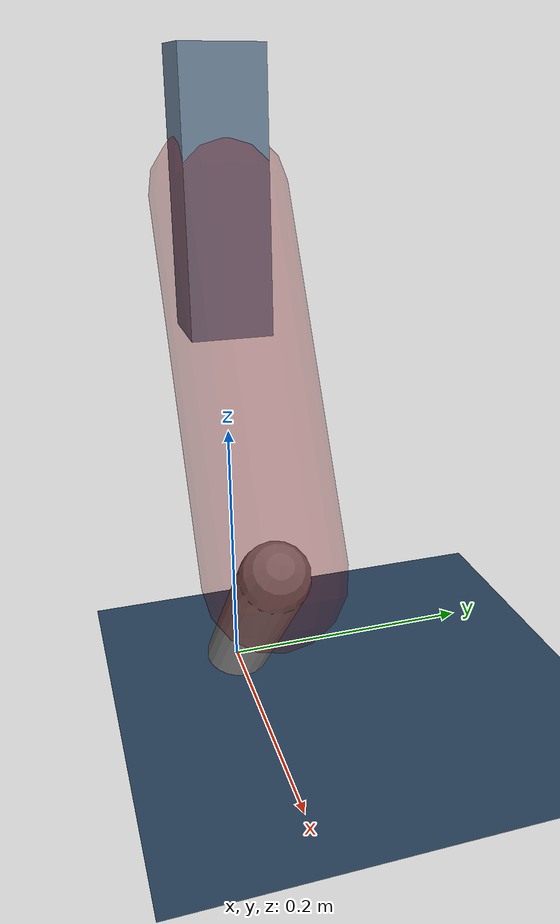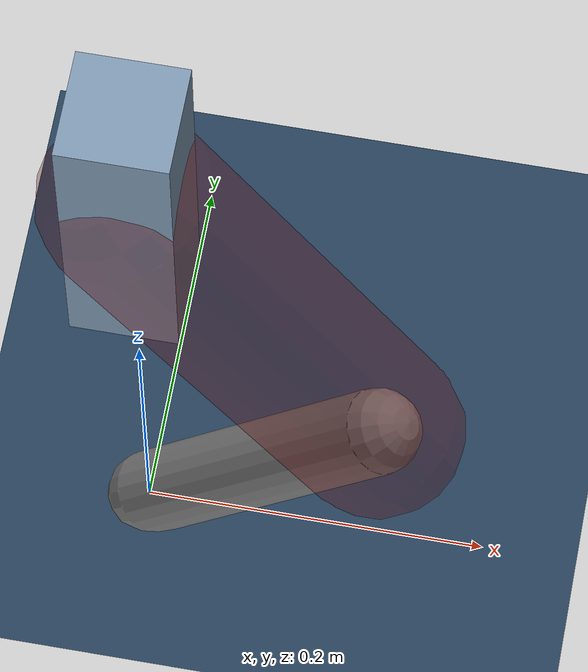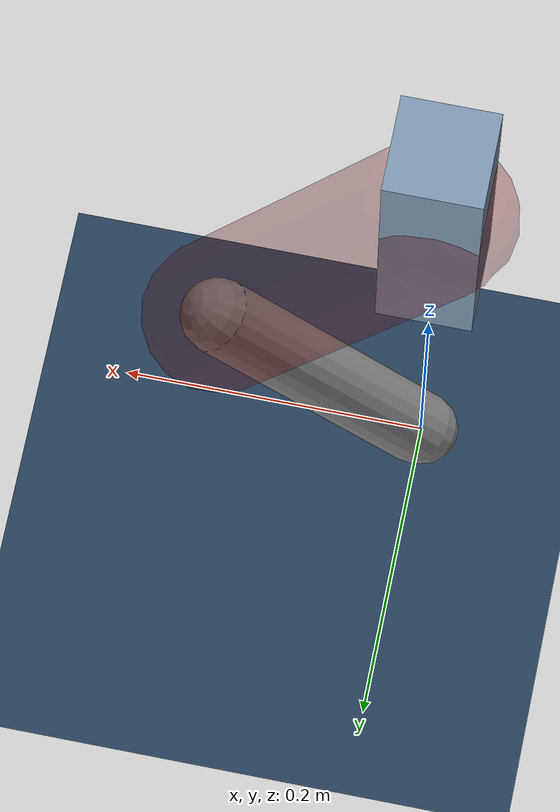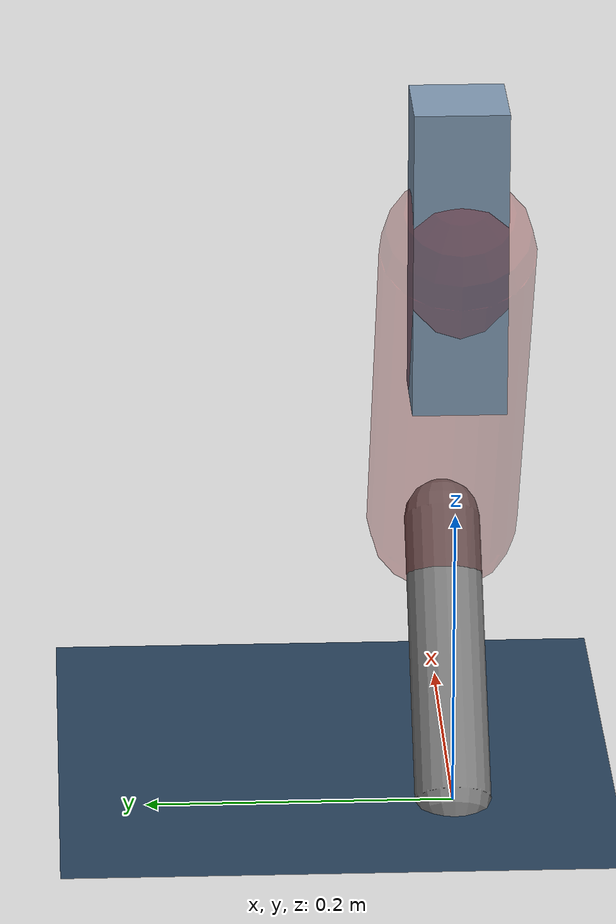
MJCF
<mujoco model="Hopper2D">
	<compiler inertiafromgeom="true" angle="radian" />
	<option timestep="0.001" integrator="implicit" cone="elliptic" solver="Newton" tolerance="1e-10" />

	<default>
		<geom contype="1" conaffinity="1" condim="3" friction="2 0.005 0.0001" solref="0.005 1" />
		<joint limited="true" damping="0.1" />
	</default>

	<asset>
		<texture name="skybox" type="skybox" builtin="gradient" rgb1=".4 .6 .8" rgb2="0 0 0" width="800" height="800" />
		<texture name="grid" type="2d" builtin="checker" rgb1=".1 .2 .3" rgb2=".2 .3 .4" width="300" height="300" mark="edge" markrgb=".2 .3 .4" />
		<material name="ground" texture="grid" texrepeat="1 1" texuniform="true" reflectance="0.1" />
		<material name="leg" rgba="0.5 0.6 0.7 1" />
	</asset>

	<worldbody>

		<geom name="floor" type="plane" size="5 5 0.25" material="ground" />

		<light directional="false" diffuse="0.8 0.8 0.8" specular="0.3 0.3 0.3" pos="0 0 2" dir="0 0 -1" />
		<light mode="targetbodycom" target="base" directional="false" diffuse="0.8 0.8 0.8" specular="0.3 0.3 0.3" pos="0 0 2" dir="0 0 -1" />

		<camera name="fixed" pos="0 -2 1" xyaxes="1 0 0 0 0 1" />
		<camera name="tracking" mode="trackcom" pos="0 -3 1" />

		<body name="root" pos="0 0 0.3818005285024955">
			<joint name="slide_x" type="slide" axis="1 0 0" range="-100 100" />
			<joint name="slide_z" type="slide" axis="0 0 1" range="0 10" />

			<body name="base" pos="0 0 0">
				<geom name="torso" type="box" size="0.03 0.03 0.1" mass="1.6760000000000002" material="leg" />

				<body name="link1" pos="0 0 0" euler="0 1.053338752643469 0">
					<joint type="hinge" axis="0 -1 0" pos="0 0 0" name="hinge1" limited="true" range="-3.14 3.14" stiffness="0" damping="0.1" />
					<geom name="thigh" type="capsule" fromto="0 0 0 0.2749921038731356 0 0" size="0.05" rgba="0.5 0 0 0.3" mass="0.9218786804574661" />

					<body name="link2" pos="0.2749921038731356 0 0" euler="0 1.2785472613631315 0">
						<joint type="hinge" axis="0 -1 0" pos="0 0 0" name="hinge2" limited="true" range="-3.14 3.14" stiffness="0" damping="0.1" />
						<geom name="shank" type="capsule" fromto="0 0 0 0.19722893196349062 0 0" size="0.025" mass="0.39858314557079244" />

					</body>
				</body>
			</body>
		</body>
	</worldbody>

	<actuator>
		<motor name="torque1" joint="hinge1" ctrlrange="-14.453953220355872 14.453953220355872" ctrllimited="true" gear="1" />
		<motor name="torque2" joint="hinge2" ctrlrange="-55.50287860644953 55.50287860644953" ctrllimited="true" gear="1" />
	</actuator>
</mujoco>
